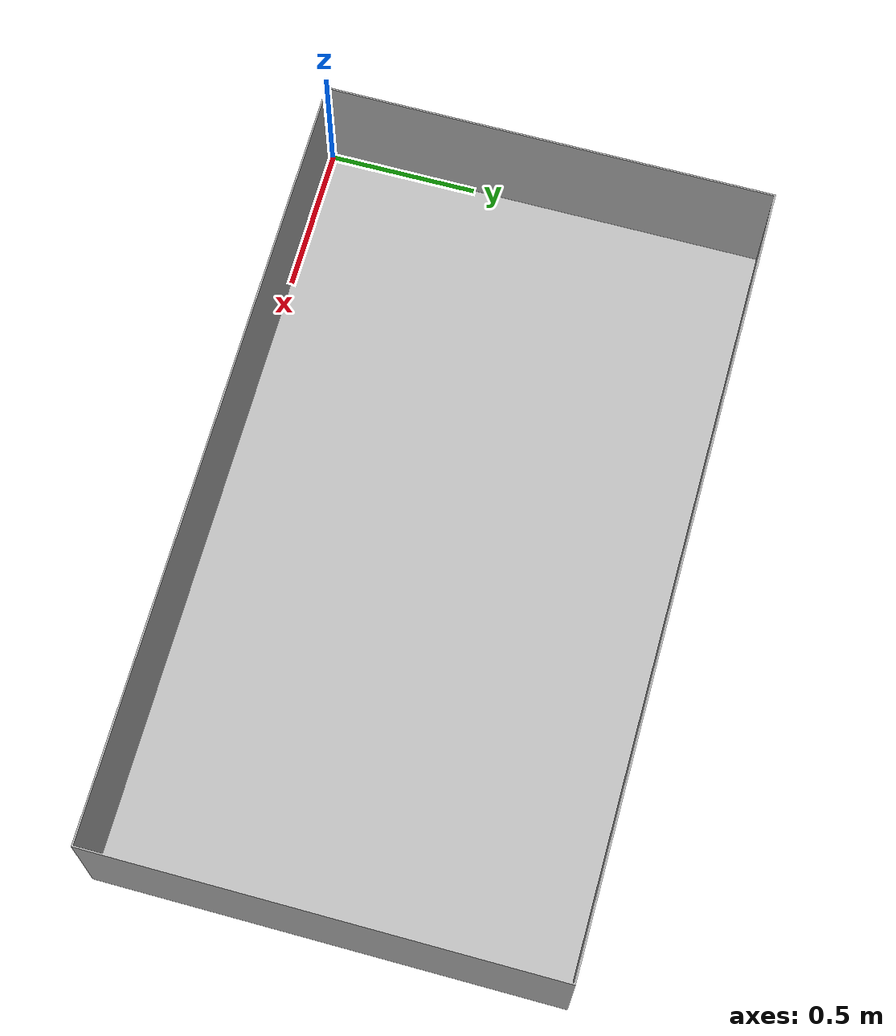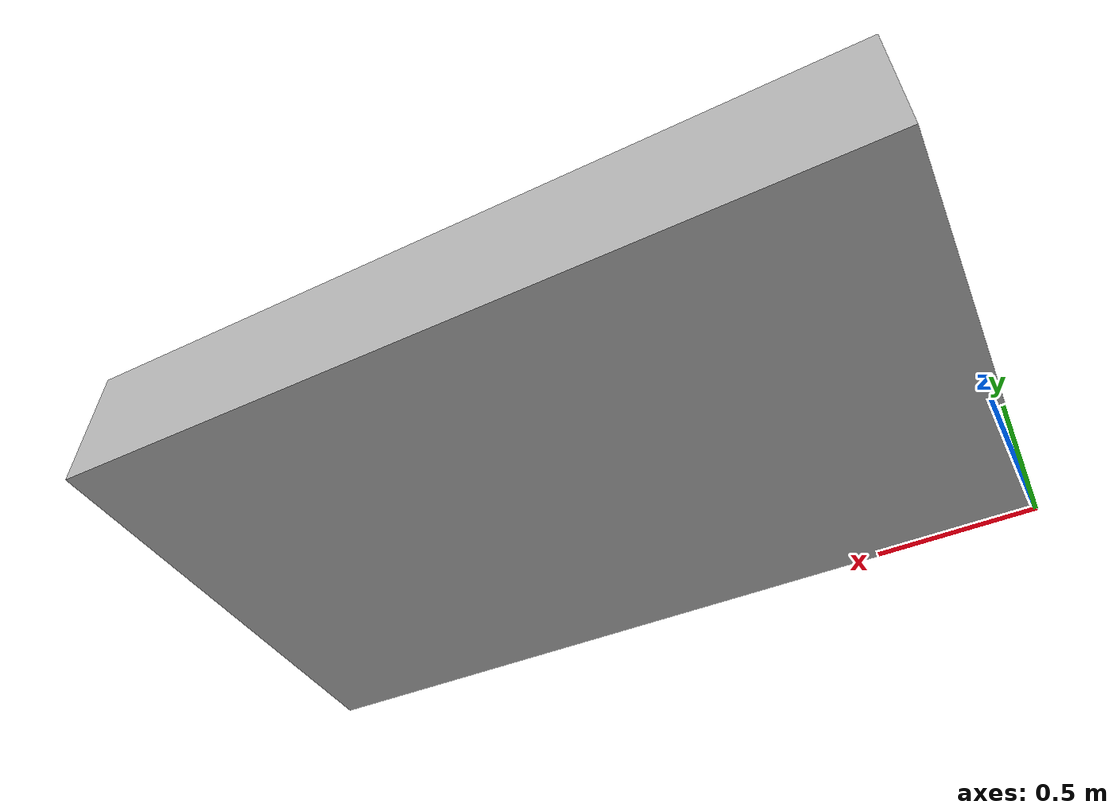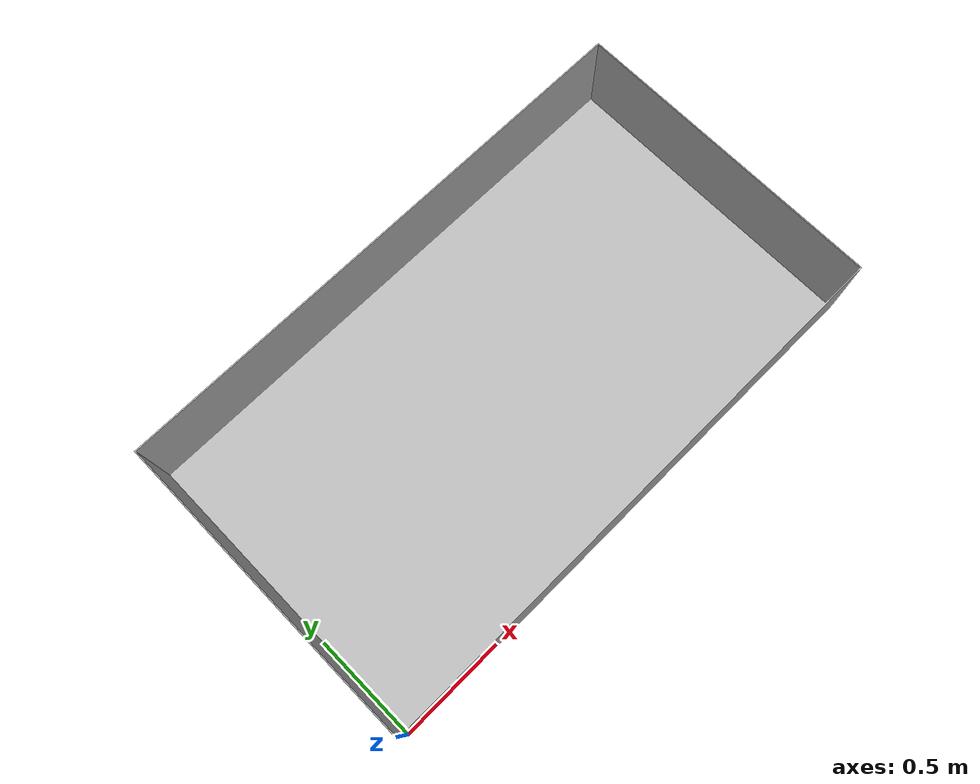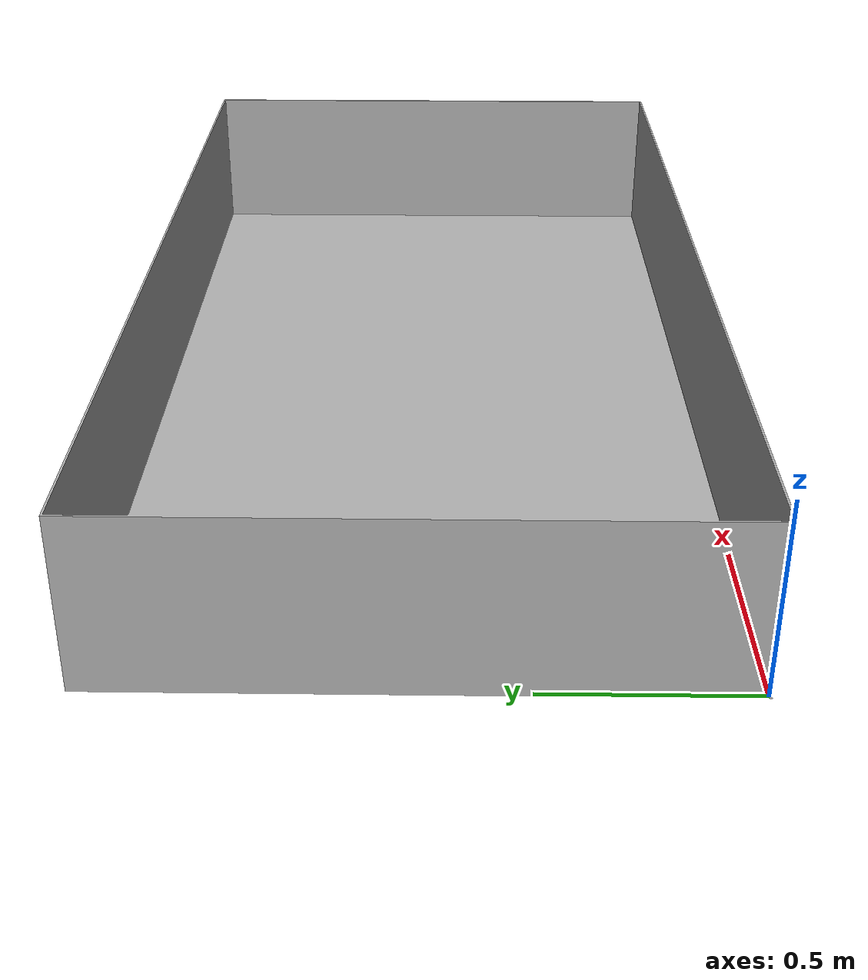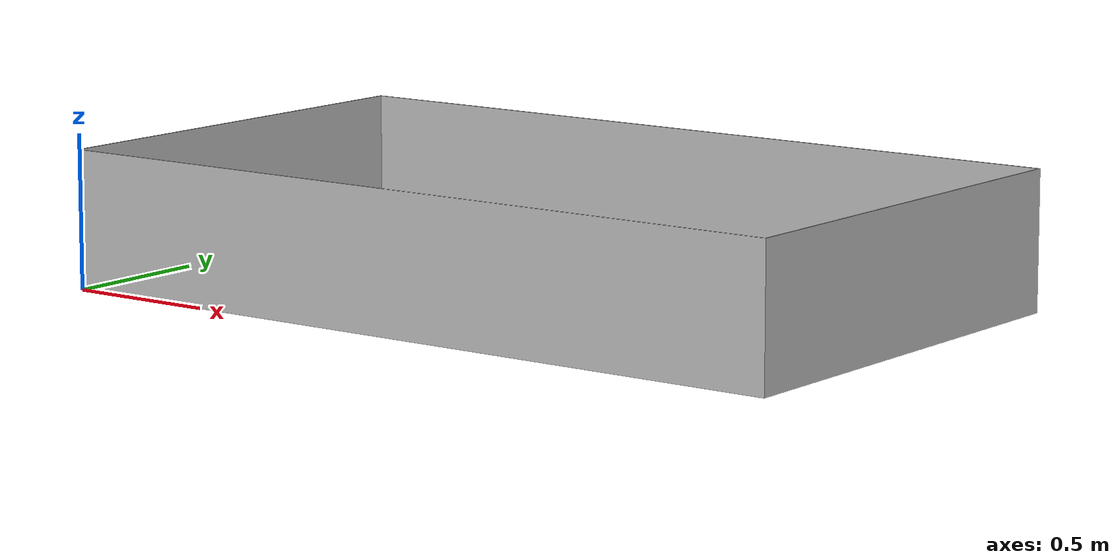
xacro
<?xml version="1.0" ?>
<robot name="Field" xmlns:xacro="http://www.ros.org/wiki/xacro">

<xacro:include filename="$(find Field_description)/urdf/materials.xacro" />
<xacro:include filename="$(find Field_description)/urdf/Field.trans" />
<xacro:include filename="$(find Field_description)/urdf/Field.gazebo" />

<gazebo>
    <static>true</static>
  </gazebo>
<link name="base_link">
  <inertial>
    <origin xyz="1.3 0.745 0.11104375991538867" rpy="0 0 0"/>
    <mass value="296.887"/>
    <inertia ixx="95.502296" iyy="233.407085" izz="316.676119" ixy="-0.0" iyz="0.0" ixz="0.0"/>
  </inertial>
  <visual>
    <origin xyz="0 0 0" rpy="0 0 0"/>
    <geometry>
      <mesh filename="package://Field_description/meshes/base_link.stl" scale="0.001 0.001 0.001"/>
    </geometry>
    <material name="silver"/>
  </visual>
  <link name="base_link">
  <visual>
    <origin xyz="0 0 0" rpy="0 0 0"/>
    <geometry>
      <mesh filename="package://Field_description/meshes/base_link.stl" scale="0.001 0.001 0.001"/>
    </geometry>
  </visual>

  <collision name="floor">
    <origin xyz="0 0 -0.01" rpy="0 0 0"/>
    <geometry>
      <box size="2.6 1.5 0.02"/>
    </geometry>
  </collision>

  <collision name="wall_front">
    <origin xyz="1.29 0 0.05" rpy="0 0 0"/>
    <geometry>
      <box size="0.02 1.5 0.1"/>
    </geometry>
  </collision>

  <collision name="wall_back">
    <origin xyz="-1.29 0 0.05" rpy="0 0 0"/>
    <geometry>
      <box size="0.02 1.5 0.1"/>
    </geometry>
  </collision>

  <collision name="wall_left">
    <origin xyz="0 0.74 0.05" rpy="0 0 0"/>
    <geometry>
      <box size="2.6 0.02 0.1"/>
    </geometry>
  </collision>

  <collision name="wall_right">
    <origin xyz="0 -0.74 0.05" rpy="0 0 0"/>
    <geometry>
      <box size="2.6 0.02 0.1"/>
    </geometry>
  </collision>
</link>
</link>

</robot>

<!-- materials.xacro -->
<robot name="Field" xmlns:xacro="http://www.ros.org/wiki/xacro" >

<material name="silver">
  <color rgba="0.700 0.700 0.700 1.000"/>
</material>

</robot>

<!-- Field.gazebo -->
<robot name="Field" xmlns:xacro="http://www.ros.org/wiki/xacro" >

<xacro:property name="body_color" value="Gazebo/Silver" />

<gazebo>
  <plugin filename="gz_ros2_control-system" name="gz_ros2_control::GazeboSimROS2ControlPlugin"></plugin>
</gazebo>
<gazebo reference="base_link">
  <material>${body_color}</material>
  <mu1>0.2</mu1>
  <mu2>0.2</mu2>
  <selfCollide>true</selfCollide>
  <gravity>true</gravity>
</gazebo>

</robot>
